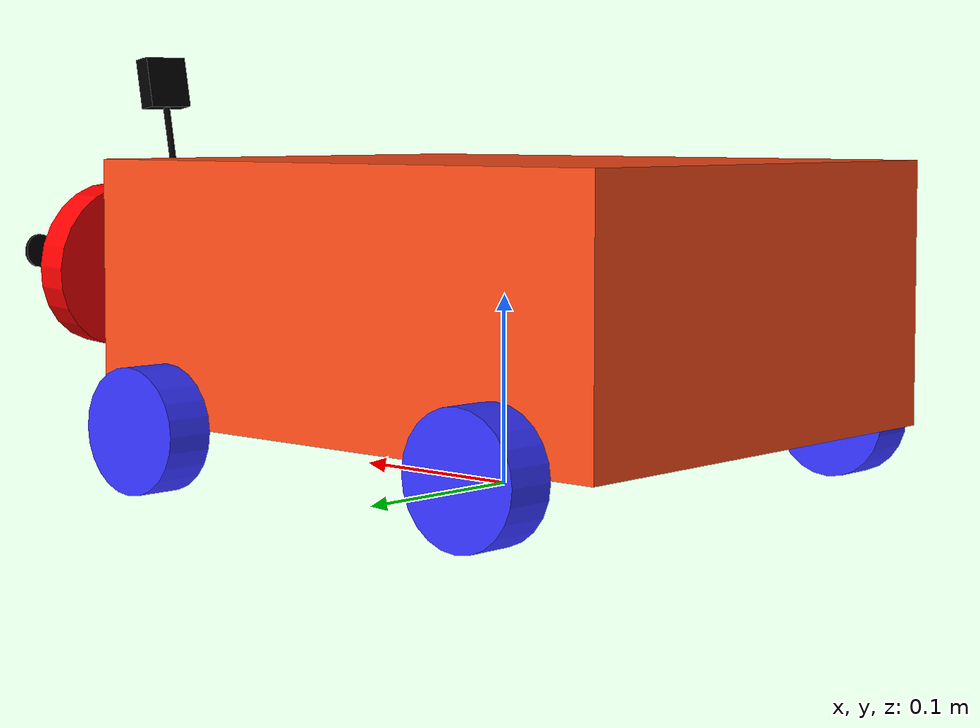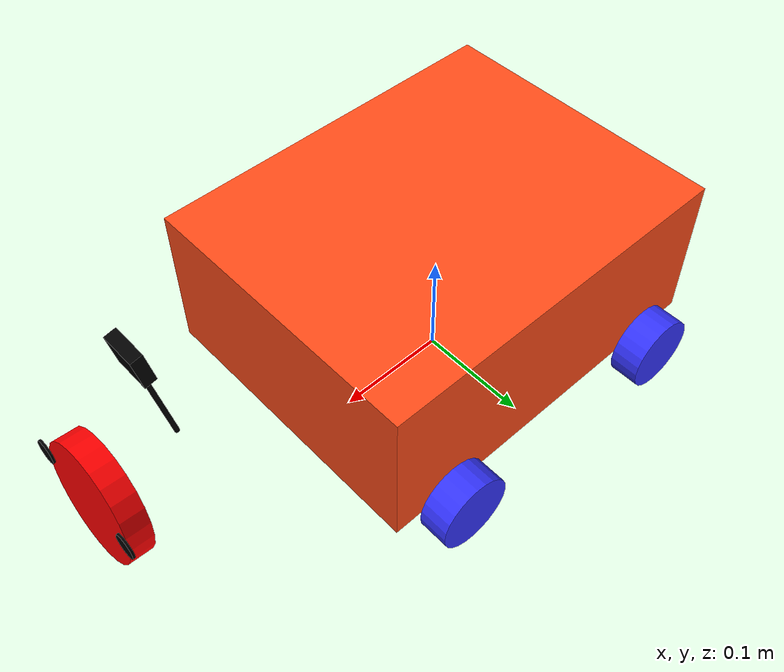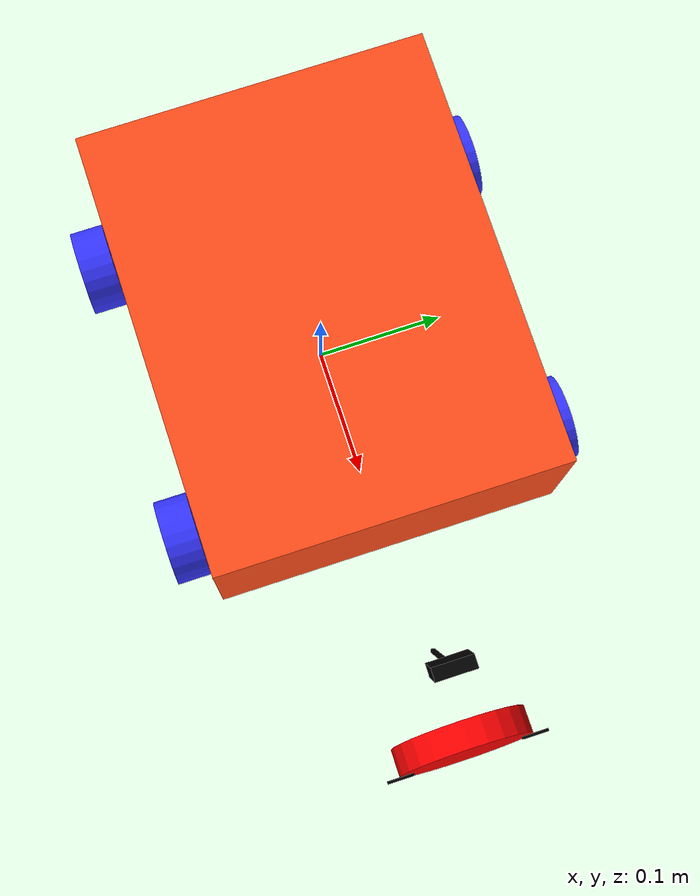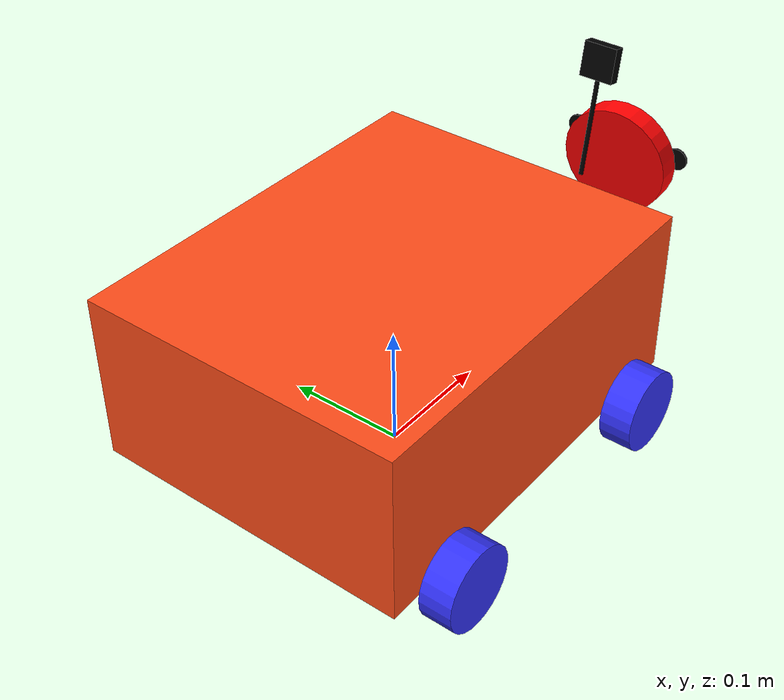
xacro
<?xml version="1.0"?>
<robot xmlns:xacro="http://www.ros.org/wiki/xacro"  name="gubot_one">
    <xacro:arg name="use_ros2_control" default="true"/>
    <xacro:arg name="sim_mode" default="false"/>
    <xacro:arg name="use_nerf_hardware" default="false"/>
    <!-- use_camera=false entfernt nur den Gazebo-Kamera-Sensor (Render-Last,
         WSL2/llvmpipe: RTF ~8% mit Kamera). Links/Joints/TF-Frames der Kamera
         bleiben immer erhalten. -->
    <xacro:arg name="use_camera" default="true"/>
    <xacro:include filename="gubot_one_geometry.xacro" />
    <xacro:if value="$(arg use_ros2_control)">
        <xacro:if value="$(arg sim_mode)">
            <xacro:include filename="ros2_control_gazebo_ign_fortress.xacro" />
        </xacro:if>
        <xacro:unless value="$(arg sim_mode)">
            <xacro:include filename="ros2_control_hardware.xacro" />
        </xacro:unless>
    </xacro:if>
    <xacro:include filename="sensor_camera.xacro" />
    <xacro:include filename="visual_face.xacro" />
    <xacro:if value="$(arg use_nerf_hardware)">
        <xacro:include filename="nerf_launch_system.xacro" />
    </xacro:if>
</robot>

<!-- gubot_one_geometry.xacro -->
<robot xmlns:xacro="http://www.ros.org/wiki/xacro" xmlns:ignition="http://ignitionrobotics.org/schema">
    <xacro:include filename="inertial_macros.xacro"/>
    <xacro:property name="chassis_length" value="0.335"/>
    <xacro:property name="chassis_width" value="0.265"/>
    <xacro:property name="chassis_height" value="0.138"/>
    <xacro:property name="chassis_mass" value="3.5"/>
    <xacro:property name="wheel_radius" value="0.033"/>
    <xacro:property name="wheel_thickness" value="0.026"/>
    <xacro:property name="wheel_mass" value="0.4"/>
    <xacro:property name="wheel_offset_x" value="0.113"/>
    <xacro:property name="wheel_offset_y" value="0.1485"/>
    <xacro:property name="wheel_offset_z" value="0.01"/>
    <xacro:property name="caster_wheel_radius" value="0.01"/>
    <xacro:property name="caster_wheel_mass" value="0.01"/>
    <xacro:property name="caster_wheel_offset_x" value="0.075"/>
    <xacro:property name="caster_wheel_offset_z" value="${wheel_offset_z - wheel_radius + caster_wheel_radius}"/>
    <material name="white">
        <color rgba="1 1 1 1" />
    </material>
    <material name="orange">
        <color rgba="1 0.3 0.1 1"/>
    </material>
    <material name="blue">
        <color rgba="0.2 0.2 1 1"/>
    </material>
    <material name="black">
        <color rgba="0 0 0 1"/>
    </material>
    <material name="red">
        <color rgba="1 0 0 1"/>
    </material>
    <!-- BASE LINK -->
    <link name="base_link">

    </link>
    <!-- ALT: base_footprint — nicht in rosbot_xl Referenz, auskommentiert -->
    <!-- BODY_LINK (wie Referenz rosbot_xl: base_link -> body_link mit Z=wheel_radius Offset) -->
    <!-- ALT: Z=0.0 — Chassis saß auf dem Boden, Räder sanken durch den Boden -->
    <joint name="base_to_body_joint" type="fixed">
        <parent link="base_link"/>
        <child link="body_link"/>
        <origin xyz="0.0 0.0 ${wheel_radius}" rpy="0.0 0.0 0.0"/>
    </joint>
    <link name="body_link">
        <visual>
            <origin xyz="0.0 0.0 ${chassis_height/2}"/>
            <geometry>
                <box size="${chassis_length} ${chassis_width} ${chassis_height}"/>
            </geometry>
            <material name="orange"/>
        </visual>
        <collision>
            <origin xyz="0.0 0.0 ${chassis_height/2}"/>
            <geometry>
                <box size="${chassis_length - 0.01} ${chassis_width - 0.01} ${chassis_height - 0.01}"/>
            </geometry>
        </collision>
        <xacro:inertial_box mass="${chassis_mass}" x="${chassis_length}" y="${chassis_width}" z="${chassis_height}">
            <origin xyz="0.0 0.0 ${chassis_height/2}" rpy="0 0 0"/>
        </xacro:inertial_box>
    </link>
    <gazebo reference="body_link">
        <material>Gazebo/Orange</material>
    </gazebo>
    <!-- IMU LINK -->
    <joint name="imu_joint" type="fixed">
        <parent link="body_link"/>
        <child link="imu_link"/>
        <origin xyz="0 0 0.05" rpy="0 0 0"/>
    </joint>
    <gazebo reference="imu_joint">
        <disableFixedJointLumping>true</disableFixedJointLumping>
    </gazebo>
    <link name="imu_link">
        <visual>
            <geometry>
                <box size="0.02 0.02 0.02"/>
            </geometry>
            <material name="black"/>
        </visual>
        <collision>
            <geometry>
                <box size="0.02 0.02 0.02"/>
            </geometry>
        </collision>
        <xacro:inertial_box mass="0.01" x="0.02" y="0.02" z="0.02">
            <origin xyz="0 0 0" rpy="0 0 0"/>
        </xacro:inertial_box>
    </link>
    <gazebo reference="imu_link">
        <material>Gazebo/Black</material>
        <!-- IMU Sensor — Ignition Fortress Konfiguration (wie Referenz rosbot_xl) -->
        <!-- ALT: Branching via use_gazebo_classic Arg + topic=imu_sensor/imu_data -->
        <sensor name="imu_sensor" type="imu">
            <always_on>true</always_on>
            <update_rate>25</update_rate>
            <visualize>false</visualize>
            <topic>imu/data_raw</topic>
            <ignition_frame_id>imu_link</ignition_frame_id>
            <enable_metrics>false</enable_metrics>
            <imu>
                <angular_velocity>
                    <x><noise type="gaussian"><mean>0.0</mean><stddev>5.24e-3</stddev><bias_mean>2.0e-3</bias_mean><bias_stddev>0.0</bias_stddev></noise></x>
                    <y><noise type="gaussian"><mean>0.0</mean><stddev>5.24e-3</stddev><bias_mean>2.0e-3</bias_mean><bias_stddev>0.0</bias_stddev></noise></y>
                    <z><noise type="gaussian"><mean>0.0</mean><stddev>5.24e-3</stddev><bias_mean>2.0e-3</bias_mean><bias_stddev>0.0</bias_stddev></noise></z>
                </angular_velocity>
                <linear_acceleration>
                    <x><noise type="gaussian"><mean>0.0</mean><stddev>1.86e-3</stddev><bias_mean>1.0e-3</bias_mean><bias_stddev>0.0</bias_stddev></noise></x>
                    <y><noise type="gaussian"><mean>0.0</mean><stddev>1.86e-3</stddev><bias_mean>1.0e-3</bias_mean><bias_stddev>0.0</bias_stddev></noise></y>
                    <z><noise type="gaussian"><mean>0.0</mean><stddev>1.86e-3</stddev><bias_mean>1.0e-3</bias_mean><bias_stddev>0.0</bias_stddev></noise></z>
                </linear_acceleration>
            </imu>
        </sensor>
    </gazebo>
    <!-- FRONT LEFT WHEEL (wie Referenz: fl_wheel_joint, parent=body_link, axis=Y, RPY=0) -->
    <!-- ALT: front_left_wheel_joint / left_wheel — umbenannt auf Referenz-Schema fl/fr/rl/rr -->
    <joint name="fl_wheel_joint" type="continuous">
        <parent link="body_link"/>
        <child link="fl_wheel_link"/>
        <origin xyz="${wheel_offset_x} ${wheel_offset_y} 0.0" rpy="0.0 0.0 0.0"/>
        <axis xyz="0.0 1.0 0.0"/>
        <limit effort="1.5" velocity="30.0"/>
        <dynamics damping="0.001" friction="0.001"/>
    </joint>
    <link name="fl_wheel_link">
        <visual>
            <geometry>
                <cylinder radius="${wheel_radius}" length="${wheel_thickness}"/>
            </geometry>
            <origin xyz="0.0 0.0 0.0" rpy="${pi/2} 0.0 0.0"/>
            <material name="blue"/>
        </visual>
        <collision>
            <geometry>
                <cylinder radius="${wheel_radius}" length="${wheel_thickness}"/>
            </geometry>
            <origin xyz="0.0 0.0 0.0" rpy="${pi/2} 0.0 0.0"/>
        </collision>
        <xacro:inertial_cylinder mass="${wheel_mass}" length="${wheel_thickness}" radius="${wheel_radius}">
            <origin xyz="0 0 0" rpy="0 0 0"/>
        </xacro:inertial_cylinder>
    </link>
    <gazebo reference="fl_wheel_link">
        <material>Gazebo/Blue</material>
        <collision>
            <surface><friction><ode>
                <mu>0.8</mu><mu2>0.2</mu2>
                <slip1>0.035</slip1><slip2>0.0</slip2>
                <fdir1 ignition:expressed_in="base_link">1 -1 0</fdir1>
            </ode></friction></surface>
        </collision>
    </gazebo>
    <!-- FRONT RIGHT WHEEL (wie Referenz: fr_wheel_joint, parent=body_link, axis=Y, RPY=0) -->
    <!-- ALT: front_right_wheel_joint / right_wheel — umbenannt auf Referenz-Schema fl/fr/rl/rr -->
    <joint name="fr_wheel_joint" type="continuous">
        <parent link="body_link"/>
        <child link="fr_wheel_link"/>
        <origin xyz="${wheel_offset_x} ${-wheel_offset_y} 0.0" rpy="0.0 0.0 0.0"/>
        <axis xyz="0.0 1.0 0.0"/>
        <limit effort="1.5" velocity="30.0"/>
        <dynamics damping="0.001" friction="0.001"/>
    </joint>
    <link name="fr_wheel_link">
        <visual>
            <geometry>
                <cylinder radius="${wheel_radius}" length="${wheel_thickness}"/>
            </geometry>
            <origin xyz="0.0 0.0 0.0" rpy="${pi/2} 0.0 0.0"/>
            <material name="blue"/>
        </visual>
        <collision>
            <geometry>
                <cylinder radius="${wheel_radius}" length="${wheel_thickness}"/>
            </geometry>
            <origin xyz="0.0 0.0 0.0" rpy="${pi/2} 0.0 0.0"/>
        </collision>
        <xacro:inertial_cylinder mass="${wheel_mass}" length="${wheel_thickness}" radius="${wheel_radius}">
            <origin xyz="0 0 0" rpy="0 0 0"/>
        </xacro:inertial_cylinder>
    </link>
    <gazebo reference="fr_wheel_link">
        <material>Gazebo/Blue</material>
        <collision>
            <surface><friction><ode>
                <mu>0.8</mu><mu2>0.2</mu2>
                <slip1>0.035</slip1><slip2>0.0</slip2>
                <fdir1 ignition:expressed_in="base_link">1 1 0</fdir1>
            </ode></friction></surface>
        </collision>
    </gazebo>
    <!-- REAR WHEELS (wie Referenz: rl/rr_wheel_joint, parent=body_link, axis=Y, RPY=0) -->
    <!-- REAR LEFT WHEEL -->
    <!-- ALT: rear_left_wheel_joint / rear_left_wheel — umbenannt auf Referenz-Schema -->
    <joint name="rl_wheel_joint" type="continuous">
        <parent link="body_link"/>
        <child link="rl_wheel_link"/>
        <origin xyz="${-wheel_offset_x} ${wheel_offset_y} 0.0" rpy="0.0 0.0 0.0"/>
        <axis xyz="0.0 1.0 0.0"/>
        <limit effort="1.5" velocity="30.0"/>
        <dynamics damping="0.001" friction="0.001"/>
    </joint>
    <link name="rl_wheel_link">
        <visual>
            <geometry>
                <cylinder radius="${wheel_radius}" length="${wheel_thickness}"/>
            </geometry>
            <origin xyz="0.0 0.0 0.0" rpy="${pi/2} 0.0 0.0"/>
            <material name="blue"/>
        </visual>
        <collision>
            <geometry>
                <cylinder radius="${wheel_radius}" length="${wheel_thickness}"/>
            </geometry>
            <origin xyz="0.0 0.0 0.0" rpy="${pi/2} 0.0 0.0"/>
        </collision>
        <xacro:inertial_cylinder mass="${wheel_mass}" length="${wheel_thickness}" radius="${wheel_radius}">
            <origin xyz="0 0 0" rpy="0 0 0"/>
        </xacro:inertial_cylinder>
    </link>
    <gazebo reference="rl_wheel_link">
        <material>Gazebo/Blue</material>
        <collision>
            <surface><friction><ode>
                <mu>0.8</mu><mu2>0.2</mu2>
                <slip1>0.035</slip1><slip2>0.0</slip2>
                <fdir1 ignition:expressed_in="base_link">1 1 0</fdir1>
            </ode></friction></surface>
        </collision>
    </gazebo>

    <!-- REAR RIGHT WHEEL -->
    <!-- ALT: rear_right_wheel_joint / rear_right_wheel — umbenannt auf Referenz-Schema -->
    <joint name="rr_wheel_joint" type="continuous">
        <parent link="body_link"/>
        <child link="rr_wheel_link"/>
        <origin xyz="${-wheel_offset_x} ${-wheel_offset_y} 0.0" rpy="0.0 0.0 0.0"/>
        <axis xyz="0.0 1.0 0.0"/>
        <limit effort="1.5" velocity="30.0"/>
        <dynamics damping="0.001" friction="0.001"/>
    </joint>
    <link name="rr_wheel_link">
        <visual>
            <geometry>
                <cylinder radius="${wheel_radius}" length="${wheel_thickness}"/>
            </geometry>
            <origin xyz="0.0 0.0 0.0" rpy="${pi/2} 0.0 0.0"/>
            <material name="blue"/>
        </visual>
        <collision>
            <geometry>
                <cylinder radius="${wheel_radius}" length="${wheel_thickness}"/>
            </geometry>
            <origin xyz="0.0 0.0 0.0" rpy="${pi/2} 0.0 0.0"/>
        </collision>
        <xacro:inertial_cylinder mass="${wheel_mass}" length="${wheel_thickness}" radius="${wheel_radius}">
            <origin xyz="0 0 0" rpy="0 0 0"/>
        </xacro:inertial_cylinder>
    </link>
    <gazebo reference="rr_wheel_link">
        <material>Gazebo/Blue</material>
        <collision>
            <surface><friction><ode>
                <mu>0.8</mu><mu2>0.2</mu2>
                <slip1>0.035</slip1><slip2>0.0</slip2>
                <fdir1 ignition:expressed_in="base_link">1 -1 0</fdir1>
            </ode></friction></surface>
        </collision>
    </gazebo>
</robot>

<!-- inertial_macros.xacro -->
<robot xmlns:xacro="http://www.ros.org/wiki/xacro" >
    <xacro:macro name="inertial_sphere" params="mass radius *origin">
        <inertial>
            <xacro:insert_block name="origin"/>
            <mass value="${mass}" />
            <inertia ixx="${(2/5) * mass * (radius*radius)}" ixy="0.0" ixz="0.0"
                    iyy="${(2/5) * mass * (radius*radius)}" iyz="0.0"
                    izz="${(2/5) * mass * (radius*radius)}" />
        </inertial>
    </xacro:macro>
    <xacro:macro name="inertial_box" params="mass x y z *origin">
        <inertial>
            <xacro:insert_block name="origin"/>
            <mass value="${mass}" />
            <inertia ixx="${(1/12) * mass * (y*y+z*z)}" ixy="0.0" ixz="0.0"
                    iyy="${(1/12) * mass * (x*x+z*z)}" iyz="0.0"
                    izz="${(1/12) * mass * (x*x+y*y)}" />
        </inertial>
    </xacro:macro>
    <xacro:macro name="inertial_cylinder" params="mass length radius *origin">
        <inertial>
            <xacro:insert_block name="origin"/>
            <mass value="${mass}" />
            <inertia ixx="${(1/12) * mass * (3*radius*radius + length*length)}" ixy="0.0" ixz="0.0"
                    iyy="${(1/12) * mass * (3*radius*radius + length*length)}" iyz="0.0"
                    izz="${(1/2) * mass * (radius*radius)}" />
        </inertial>
    </xacro:macro>
</robot>

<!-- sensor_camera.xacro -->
<robot xmlns:xacro="http://www.ros.org/wiki/xacro" >
    <joint name="camera_joint" type="fixed">
        <parent link="body_link"/>
        <child link="camera_link"/>
        <origin xyz="0.276 0 0.181" rpy="0 0.18 0"/>
    </joint>
    <link name="camera_link">
        <visual>
            <geometry>
                <box size="0.010 0.03 0.03"/>
            </geometry>
            <material name="black"/>
        </visual>
        <visual>
            <origin xyz="0 0 -0.05"/>
            <geometry>
                <cylinder radius="0.002" length="0.1"/>
            </geometry>
            <material name="black"/>
        </visual>
    </link>
    <joint name="camera_optical_joint" type="fixed">
        <parent link="camera_link"/>
        <child link="camera_link_optical"/>
        <origin xyz="0 0 0" rpy="${-pi/2} 0 ${-pi/2}"/>
    </joint>
    <link name="camera_link_optical"></link>
    <gazebo reference="camera_link">
        <material>Gazebo/Black</material>
        <sensor name="camera" type="camera">
            <pose> 0 0 0 0 0 0 </pose>
            <visualize>false</visualize>
            <update_rate>10</update_rate>
            <camera>
                <horizontal_fov>1.089</horizontal_fov>
                <image>
                    <format>R8G8B8</format>
                    <width>640</width>
                    <height>480</height>
                </image>
                <clip>
                    <near>0.05</near>
                    <far>8.0</far>
                </clip>
            </camera>
            <!--          Pfad 'gubot_one/base_link/camera' verwendet, sondern den TF-Frame -->
            <!--          'camera_link_optical' der von robot_state_publisher veroeffentlicht wird. -->
            <!--          ALT: kein ignition_frame_id -> Ignition nutzt 'modelname/linkname/sensorname' -->
            <!--              -> RViz kann Frame nicht finden -> queue overflow -> Flackern - -> -->
            <topic>camera/image_raw</topic>
            <ignition_frame_id>camera_link_optical</ignition_frame_id>
        </sensor>
    </gazebo>
</robot>

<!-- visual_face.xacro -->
<robot xmlns:xacro="http://www.ros.org/wiki/xacro" >
    <joint name="face_joint" type="fixed">
        <parent link="body_link"/>
        <child link="face_link"/>
        <origin xyz="${chassis_length} 0 ${chassis_height/2}" rpy="0 0 0"/>
    </joint>
    <link name="face_link">
        <visual>
            <origin xyz="0 0.05 0.01" rpy="0 ${pi/2} 0"/>
            <geometry>
                <cylinder radius="0.01" length="0.002"/>
            </geometry>
            <material name="black"/>
        </visual>
        <visual>
            <origin xyz="0 -0.05 0.01" rpy="0 ${pi/2} 0"/>
            <geometry>
                <cylinder radius="0.01" length="0.002"/>
            </geometry>
            <material name="black"/>
        </visual>
        <visual>
            <origin xyz="-0.011 0 -0.00" rpy="0 ${1.5} 0"/>
            <geometry>
                <cylinder radius="0.05" length="0.02"/>
            </geometry>
            <material name="red"/>
        </visual>
    </link>
    <gazebo reference="face_link">
        <material>Gazebo/Black</material>
    </gazebo>
</robot>
